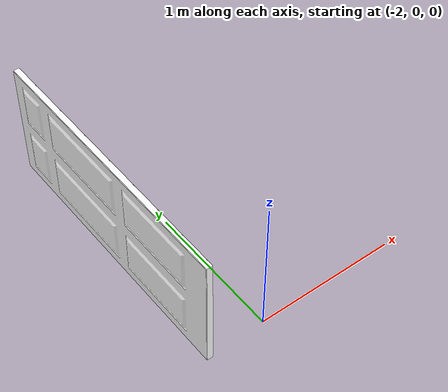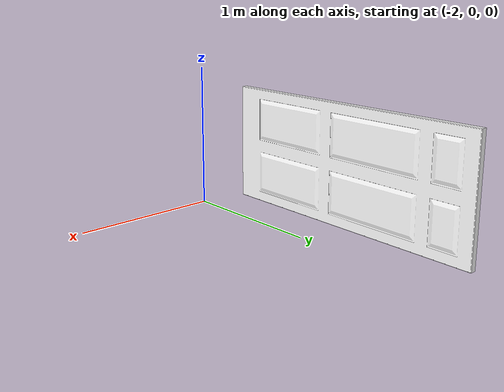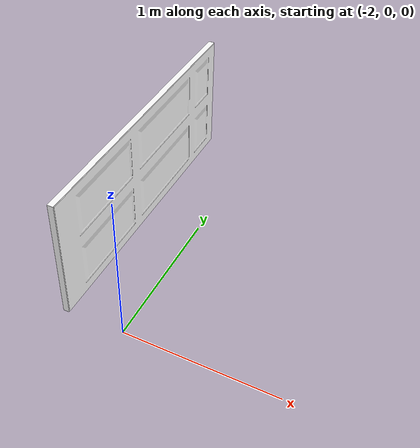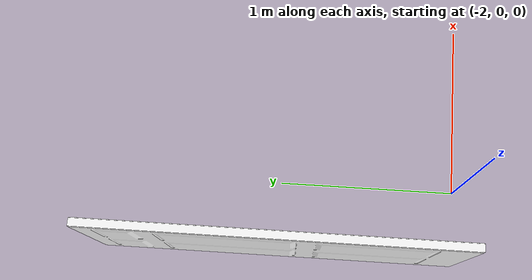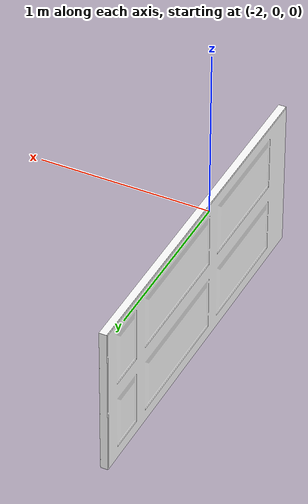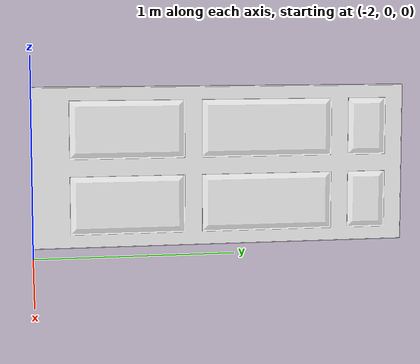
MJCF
<mujoco model="Door_6cb9ae3d">
  <compiler autolimits="true" boundmass="0.01" angle="radian"/>
  <default>
    <default class="/">
      <default class="__VISUAL_MJT__">
        <geom contype="0" conaffinity="0" group="0" mass="1e-08"/>
      </default>
      <default class="__STRUCTURAL_MJT__">
        <geom contype="8" conaffinity="15" group="4" friction="0.90000000000000002 0.90000000000000002 0.001" density="500" solref="0.025000000000000001 1" solimp="0.998 0.998 0.001"/>
      </default>
      <default class="__DYNAMIC_MJT__">
        <geom contype="1" conaffinity="15" group="4" friction="0.90000000000000002 0.90000000000000002 0.001" density="500" solref="0.025000000000000001 1" solimp="0.998 0.998 0.001"/>
      </default>
      <default class="__ARTICULABLE_DYNAMIC_MJT__">
        <geom contype="0" conaffinity="7" group="4" friction="0.90000000000000002 0.90000000000000002 0.001" density="500" solref="0.025000000000000001 1" solimp="0.998 0.998 0.001"/>
      </default>
    </default>
  </default>
  <asset>
    <texture name="WornWood" type="2d" file="TexturesCom_WornWood2_albedo_S.png"/>
    <material name="material_WornWood" class="/" specular="0.5" shininess="0.5" rgba="1 1 1 1"/>
    <mesh name="Door_6cb9ae3d_Door_6cb9ae3d" class="/" file="Door_6cb9ae3d_Door_6cb9ae3d/Door_6cb9ae3d_Door_6cb9ae3d.obj" scale="1 1 1" inertia="legacy"/>
  </asset>
  <worldbody>
    <body name="Door_6cb9ae3d">
      <body name="Door_6cb9ae3d_Door_6cb9ae3d" pos="-0 0 0" quat="1 0 0 0">
        <geom name="Door_6cb9ae3d_Door_6cb9ae3d" class="__VISUAL_MJT__" type="mesh" material="material_WornWood" mesh="Door_6cb9ae3d_Door_6cb9ae3d"/>
        <geom name="Door_6cb9ae3d_Door_6cb9ae3d_PrimitiveCollider_0" class="__DYNAMIC_MJT__" type="box" size="0.42500007152557373 1 0.028000006452202797" rgba="0 1 0 1" pos="-2.4000000953674316 1 0.39999997615814209" quat="8.6595606834267297e-17 0.70710678118654757 -8.6595606834267297e-17 0.70710678118654757"/>
        <geom name="Door_6cb9ae3d_Door_6cb9ae3d_PrimitiveCollider_1" class="__DYNAMIC_MJT__" type="box" size="0.42974501848220825 1.0030472278594971 0.02788664773106575" rgba="0 1 0 1" pos="-2.4000000953674316 0.99930685758590698 0.39999997615814209" quat="8.6595606834267297e-17 0.70710678118654757 -8.6595606834267297e-17 0.70710678118654757"/>
      </body>
    </body>
  </worldbody>
</mujoco>
